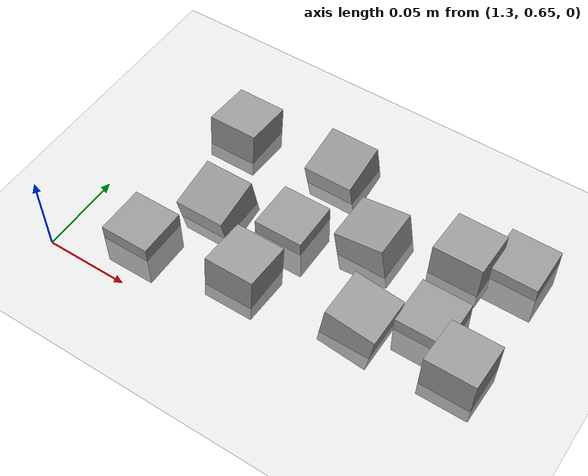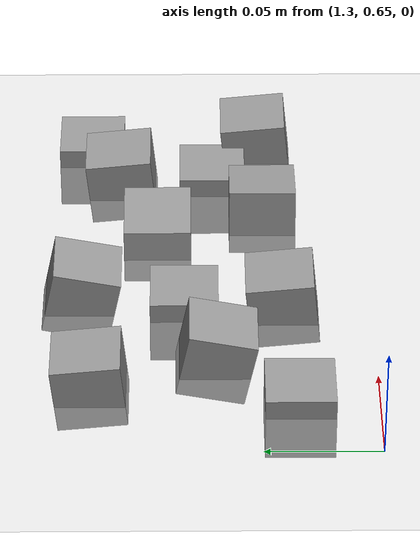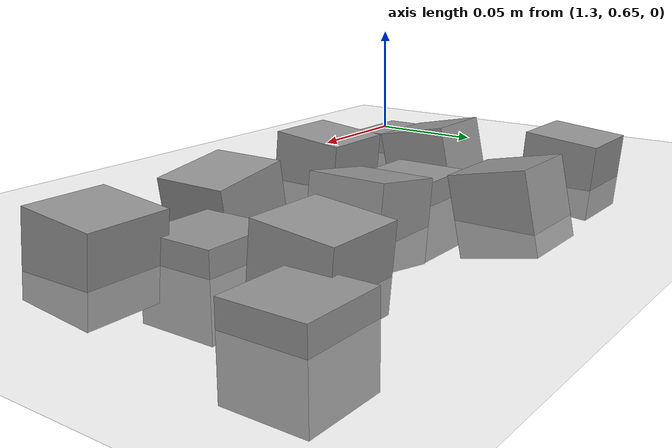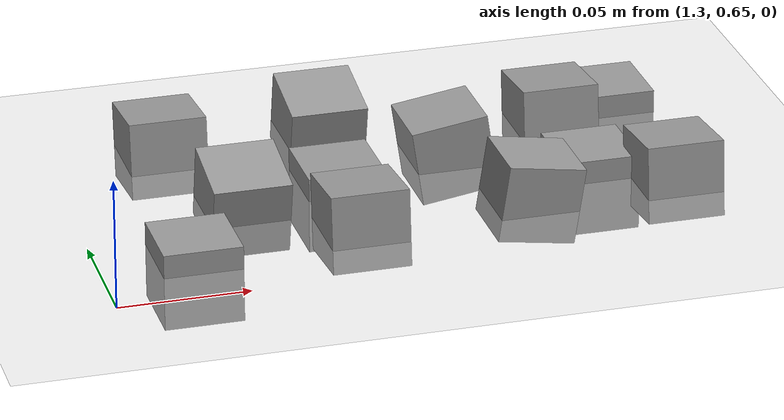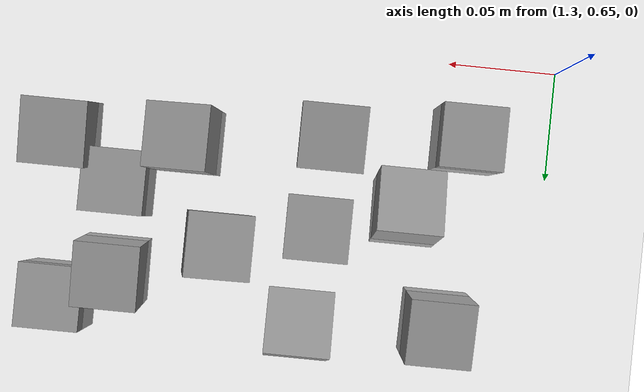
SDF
<sdf version="1.7">
 <world name="default">
  <model name="ground_plane">
   <static>1</static>
   <link name="link">
    <collision name="collision">
     <geometry><plane><normal>0 0 1</normal><size>100 100</size></plane></geometry>
     <surface><friction><ode><mu>100</mu><mu2>50</mu2></ode></friction></surface>
    </collision>
    <visual name="visual">
     <cast_shadows>0</cast_shadows>
     <geometry><plane><normal>0 0 1</normal><size>100 100</size></plane></geometry>
     <material>
      <script><uri>file://media/materials/scripts/gazebo.material</uri><name>Gazebo/Grey</name></script>
     </material>
    </visual>
   </link>
  </model>
  <model name="stone_road_0">
   <link name="link_0">
    <inertial>
     <mass>1</mass>
     <inertia>
      <ixx>0.166667</ixx>
      <ixy>0</ixy>
      <ixz>0</ixz>
      <iyy>0.166667</iyy>
      <iyz>0</iyz>
      <izz>0.166667</izz>
     </inertia>
    </inertial>
    <pose>-0.171827 0.03973 0.003778 0.2 -0 0</pose>
    <kinematic>1</kinematic>
    <visual name="visual">
     <geometry><box><size>0.03 0.03 0.03</size></box></geometry>
     <material>
      <lighting>1</lighting>
      <script><uri>file://media/materials/scripts/gazebo.material</uri><name>Gazebo/Grey</name></script>
      <shader type="pixel"><normal_map>__default__</normal_map></shader>
      <ambient>0.3 0.3 0.3 1</ambient>
      <diffuse>0.7 0.7 0.7 1</diffuse>
      <specular>0.01 0.01 0.01 1</specular>
      <emissive>0 0 0 1</emissive>
     </material>
    </visual>
    <collision name="collision">
     <geometry><box><size>0.03 0.03 0.03</size></box></geometry>
     <surface>
      <friction>
       <ode><mu>1</mu><mu2>1</mu2><fdir1>0 0 0</fdir1><slip1>0</slip1><slip2>0</slip2></ode>
       <torsional>
        <coefficient>1</coefficient>
        <patch_radius>0</patch_radius>
        <surface_radius>0</surface_radius>
        <use_patch_radius>1</use_patch_radius>
        <ode><slip>0</slip></ode>
       </torsional>
      </friction>
      <bounce><restitution_coefficient>0</restitution_coefficient><threshold>1e+06</threshold></bounce>
      <contact>
       <collide_without_contact>0</collide_without_contact>
       <collide_without_contact_bitmask>1</collide_without_contact_bitmask>
       <collide_bitmask>1</collide_bitmask>
       <ode>
        <soft_cfm>0</soft_cfm>
        <soft_erp>0.2</soft_erp>
        <kp>1e+13</kp>
        <kd>1</kd>
        <max_vel>0.01</max_vel>
        <min_depth>0</min_depth>
       </ode>
       <bullet>
        <split_impulse>1</split_impulse>
        <split_impulse_penetration_threshold>-0.01</split_impulse_penetration_threshold>
        <soft_cfm>0</soft_cfm>
        <soft_erp>0.2</soft_erp>
        <kp>1e+13</kp>
        <kd>1</kd>
       </bullet>
      </contact>
     </surface>
    </collision>
   </link>
   <link name="link_0_clone_2">
    <inertial>
     <mass>1</mass>
     <inertia>
      <ixx>0.166667</ixx>
      <ixy>0</ixy>
      <ixz>0</ixz>
      <iyy>0.166667</iyy>
      <iyz>0</iyz>
      <izz>0.166667</izz>
     </inertia>
    </inertial>
    <pose>-0.065685 0.018139 0.003778 0 0.15 0</pose>
    <kinematic>1</kinematic>
    <visual name="visual">
     <geometry><box><size>0.03 0.03 0.03</size></box></geometry>
     <material>
      <lighting>1</lighting>
      <script><uri>file://media/materials/scripts/gazebo.material</uri><name>Gazebo/Grey</name></script>
      <shader type="pixel"><normal_map>__default__</normal_map></shader>
      <ambient>0.3 0.3 0.3 1</ambient>
      <diffuse>0.7 0.7 0.7 1</diffuse>
      <specular>0.01 0.01 0.01 1</specular>
      <emissive>0 0 0 1</emissive>
     </material>
    </visual>
    <collision name="collision">
     <geometry><box><size>0.03 0.03 0.03</size></box></geometry>
     <surface>
      <friction>
       <ode><mu>1</mu><mu2>1</mu2><fdir1>0 0 0</fdir1><slip1>0</slip1><slip2>0</slip2></ode>
       <torsional>
        <coefficient>1</coefficient>
        <patch_radius>0</patch_radius>
        <surface_radius>0</surface_radius>
        <use_patch_radius>1</use_patch_radius>
        <ode><slip>0</slip></ode>
       </torsional>
      </friction>
      <bounce><restitution_coefficient>0</restitution_coefficient><threshold>1e+06</threshold></bounce>
      <contact>
       <collide_without_contact>0</collide_without_contact>
       <collide_without_contact_bitmask>1</collide_without_contact_bitmask>
       <collide_bitmask>1</collide_bitmask>
       <ode>
        <soft_cfm>0</soft_cfm>
        <soft_erp>0.2</soft_erp>
        <kp>1e+13</kp>
        <kd>1</kd>
        <max_vel>0.01</max_vel>
        <min_depth>0</min_depth>
       </ode>
       <bullet>
        <split_impulse>1</split_impulse>
        <split_impulse_penetration_threshold>-0.01</split_impulse_penetration_threshold>
        <soft_cfm>0</soft_cfm>
        <soft_erp>0.2</soft_erp>
        <kp>1e+13</kp>
        <kd>1</kd>
       </bullet>
      </contact>
     </surface>
    </collision>
   </link>
   <link name="link_0_clone_2_clone_2_clone_1">
    <inertial>
     <mass>1</mass>
     <inertia>
      <ixx>0.166667</ixx>
      <ixy>0</ixy>
      <ixz>0</ixz>
      <iyy>0.166667</iyy>
      <iyz>0</iyz>
      <izz>0.166667</izz>
     </inertia>
    </inertial>
    <pose>-0.085624 0.065625 0.003778 0 -0.15 0</pose>
    <kinematic>1</kinematic>
    <visual name="visual">
     <geometry><box><size>0.03 0.03 0.03</size></box></geometry>
     <material>
      <lighting>1</lighting>
      <script><uri>file://media/materials/scripts/gazebo.material</uri><name>Gazebo/Grey</name></script>
      <shader type="pixel"><normal_map>__default__</normal_map></shader>
      <ambient>0.3 0.3 0.3 1</ambient>
      <diffuse>0.7 0.7 0.7 1</diffuse>
      <specular>0.01 0.01 0.01 1</specular>
      <emissive>0 0 0 1</emissive>
     </material>
    </visual>
    <collision name="collision">
     <geometry><box><size>0.03 0.03 0.03</size></box></geometry>
     <surface>
      <friction>
       <ode><mu>1</mu><mu2>1</mu2><fdir1>0 0 0</fdir1><slip1>0</slip1><slip2>0</slip2></ode>
       <torsional>
        <coefficient>1</coefficient>
        <patch_radius>0</patch_radius>
        <surface_radius>0</surface_radius>
        <use_patch_radius>1</use_patch_radius>
        <ode><slip>0</slip></ode>
       </torsional>
      </friction>
      <bounce><restitution_coefficient>0</restitution_coefficient><threshold>1e+06</threshold></bounce>
      <contact>
       <collide_without_contact>0</collide_without_contact>
       <collide_without_contact_bitmask>1</collide_without_contact_bitmask>
       <collide_bitmask>1</collide_bitmask>
       <ode>
        <soft_cfm>0</soft_cfm>
        <soft_erp>0.2</soft_erp>
        <kp>1e+13</kp>
        <kd>1</kd>
        <max_vel>0.01</max_vel>
        <min_depth>0</min_depth>
       </ode>
       <bullet>
        <split_impulse>1</split_impulse>
        <split_impulse_penetration_threshold>-0.01</split_impulse_penetration_threshold>
        <soft_cfm>0</soft_cfm>
        <soft_erp>0.2</soft_erp>
        <kp>1e+13</kp>
        <kd>1</kd>
       </bullet>
      </contact>
     </surface>
    </collision>
   </link>
   <link name="link_0_clone_2_clone_2_clone_13_clone_clone_14">
    <inertial>
     <mass>1</mass>
     <inertia>
      <ixx>0.166667</ixx>
      <ixy>0</ixy>
      <ixz>0</ixz>
      <iyy>0.166667</iyy>
      <iyz>0</iyz>
      <izz>0.166667</izz>
     </inertia>
    </inertial>
    <pose>-0.190578 0.093923 0.003778 -0.1 0 0</pose>
    <kinematic>1</kinematic>
    <visual name="visual">
     <geometry><box><size>0.03 0.03 0.03</size></box></geometry>
     <material>
      <lighting>1</lighting>
      <script><uri>file://media/materials/scripts/gazebo.material</uri><name>Gazebo/Grey</name></script>
      <shader type="pixel"><normal_map>__default__</normal_map></shader>
      <ambient>0.3 0.3 0.3 1</ambient>
      <diffuse>0.7 0.7 0.7 1</diffuse>
      <specular>0.01 0.01 0.01 1</specular>
      <emissive>0 0 0 1</emissive>
     </material>
    </visual>
    <collision name="collision">
     <geometry><box><size>0.03 0.03 0.03</size></box></geometry>
     <surface>
      <friction>
       <ode><mu>1</mu><mu2>1</mu2><fdir1>0 0 0</fdir1><slip1>0</slip1><slip2>0</slip2></ode>
       <torsional>
        <coefficient>1</coefficient>
        <patch_radius>0</patch_radius>
        <surface_radius>0</surface_radius>
        <use_patch_radius>1</use_patch_radius>
        <ode><slip>0</slip></ode>
       </torsional>
      </friction>
      <bounce><restitution_coefficient>0</restitution_coefficient><threshold>1e+06</threshold></bounce>
      <contact>
       <collide_without_contact>0</collide_without_contact>
       <collide_without_contact_bitmask>1</collide_without_contact_bitmask>
       <collide_bitmask>1</collide_bitmask>
       <ode>
        <soft_cfm>0</soft_cfm>
        <soft_erp>0.2</soft_erp>
        <kp>1e+13</kp>
        <kd>1</kd>
        <max_vel>0.01</max_vel>
        <min_depth>0</min_depth>
       </ode>
       <bullet>
        <split_impulse>1</split_impulse>
        <split_impulse_penetration_threshold>-0.01</split_impulse_penetration_threshold>
        <soft_cfm>0</soft_cfm>
        <soft_erp>0.2</soft_erp>
        <kp>1e+13</kp>
        <kd>1</kd>
       </bullet>
      </contact>
     </surface>
    </collision>
   </link>
   <link name="link_0_clone_2_clone_2_clone_13_clone_clone_16_clone_0">
    <inertial>
     <mass>1</mass>
     <inertia>
      <ixx>0.166667</ixx>
      <ixy>0</ixy>
      <ixz>0</ixz>
      <iyy>0.166667</iyy>
      <iyz>0</iyz>
      <izz>0.166667</izz>
     </inertia>
    </inertial>
    <pose>-0.010782 0.09679 -0.006222 0 -0 0</pose>
    <kinematic>1</kinematic>
    <visual name="visual">
     <geometry><box><size>0.03 0.03 0.03</size></box></geometry>
     <material>
      <lighting>1</lighting>
      <script><uri>file://media/materials/scripts/gazebo.material</uri><name>Gazebo/Grey</name></script>
      <shader type="pixel"><normal_map>__default__</normal_map></shader>
      <ambient>0.3 0.3 0.3 1</ambient>
      <diffuse>0.7 0.7 0.7 1</diffuse>
      <specular>0.01 0.01 0.01 1</specular>
      <emissive>0 0 0 1</emissive>
     </material>
    </visual>
    <collision name="collision">
     <geometry><box><size>0.03 0.03 0.03</size></box></geometry>
     <surface>
      <friction>
       <ode><mu>1</mu><mu2>1</mu2><fdir1>0 0 0</fdir1><slip1>0</slip1><slip2>0</slip2></ode>
       <torsional>
        <coefficient>1</coefficient>
        <patch_radius>0</patch_radius>
        <surface_radius>0</surface_radius>
        <use_patch_radius>1</use_patch_radius>
        <ode><slip>0</slip></ode>
       </torsional>
      </friction>
      <bounce><restitution_coefficient>0</restitution_coefficient><threshold>1e+06</threshold></bounce>
      <contact>
       <collide_without_contact>0</collide_without_contact>
       <collide_without_contact_bitmask>1</collide_without_contact_bitmask>
       <collide_bitmask>1</collide_bitmask>
       <ode>
        <soft_cfm>0</soft_cfm>
        <soft_erp>0.2</soft_erp>
        <kp>1e+13</kp>
        <kd>1</kd>
        <max_vel>0.01</max_vel>
        <min_depth>0</min_depth>
       </ode>
       <bullet>
        <split_impulse>1</split_impulse>
        <split_impulse_penetration_threshold>-0.01</split_impulse_penetration_threshold>
        <soft_cfm>0</soft_cfm>
        <soft_erp>0.2</soft_erp>
        <kp>1e+13</kp>
        <kd>1</kd>
       </bullet>
      </contact>
     </surface>
    </collision>
   </link>
   <link name="link_0_clone_2_clone_2_clone_13_clone_clone_16_clone_2">
    <inertial>
     <mass>1</mass>
     <inertia>
      <ixx>0.166667</ixx>
      <ixy>0</ixy>
      <ixz>0</ixz>
      <iyy>0.166667</iyy>
      <iyz>0</iyz>
      <izz>0.166667</izz>
     </inertia>
    </inertial>
    <pose>-0.035128 0.040728 -0.006222 0 -0 0</pose>
    <kinematic>1</kinematic>
    <visual name="visual">
     <geometry><box><size>0.03 0.03 0.03</size></box></geometry>
     <material>
      <lighting>1</lighting>
      <script><uri>file://media/materials/scripts/gazebo.material</uri><name>Gazebo/Grey</name></script>
      <shader type="pixel"><normal_map>__default__</normal_map></shader>
      <ambient>0.3 0.3 0.3 1</ambient>
      <diffuse>0.7 0.7 0.7 1</diffuse>
      <specular>0.01 0.01 0.01 1</specular>
      <emissive>0 0 0 1</emissive>
     </material>
    </visual>
    <collision name="collision">
     <geometry><box><size>0.03 0.03 0.03</size></box></geometry>
     <surface>
      <friction>
       <ode><mu>1</mu><mu2>1</mu2><fdir1>0 0 0</fdir1><slip1>0</slip1><slip2>0</slip2></ode>
       <torsional>
        <coefficient>1</coefficient>
        <patch_radius>0</patch_radius>
        <surface_radius>0</surface_radius>
        <use_patch_radius>1</use_patch_radius>
        <ode><slip>0</slip></ode>
       </torsional>
      </friction>
      <bounce><restitution_coefficient>0</restitution_coefficient><threshold>1e+06</threshold></bounce>
      <contact>
       <collide_without_contact>0</collide_without_contact>
       <collide_without_contact_bitmask>1</collide_without_contact_bitmask>
       <collide_bitmask>1</collide_bitmask>
       <ode>
        <soft_cfm>0</soft_cfm>
        <soft_erp>0.2</soft_erp>
        <kp>1e+13</kp>
        <kd>1</kd>
        <max_vel>0.01</max_vel>
        <min_depth>0</min_depth>
       </ode>
       <bullet>
        <split_impulse>1</split_impulse>
        <split_impulse_penetration_threshold>-0.01</split_impulse_penetration_threshold>
        <soft_cfm>0</soft_cfm>
        <soft_erp>0.2</soft_erp>
        <kp>1e+13</kp>
        <kd>1</kd>
       </bullet>
      </contact>
     </surface>
    </collision>
   </link>
   <link name="link_0_clone_2_clone_2_clone_13_clone_clone_16_clone_31">
    <inertial>
     <mass>1</mass>
     <inertia>
      <ixx>0.166667</ixx>
      <ixy>0</ixy>
      <ixz>0</ixz>
      <iyy>0.166667</iyy>
      <iyz>0</iyz>
      <izz>0.166667</izz>
     </inertia>
    </inertial>
    <pose>-0.198811 0.004584 -0.006222 0 -0 0</pose>
    <kinematic>1</kinematic>
    <visual name="visual">
     <geometry><box><size>0.03 0.03 0.03</size></box></geometry>
     <material>
      <lighting>1</lighting>
      <script><uri>file://media/materials/scripts/gazebo.material</uri><name>Gazebo/Grey</name></script>
      <shader type="pixel"><normal_map>__default__</normal_map></shader>
      <ambient>0.3 0.3 0.3 1</ambient>
      <diffuse>0.7 0.7 0.7 1</diffuse>
      <specular>0.01 0.01 0.01 1</specular>
      <emissive>0 0 0 1</emissive>
     </material>
    </visual>
    <collision name="collision">
     <geometry><box><size>0.03 0.03 0.03</size></box></geometry>
     <surface>
      <friction>
       <ode><mu>1</mu><mu2>1</mu2><fdir1>0 0 0</fdir1><slip1>0</slip1><slip2>0</slip2></ode>
       <torsional>
        <coefficient>1</coefficient>
        <patch_radius>0</patch_radius>
        <surface_radius>0</surface_radius>
        <use_patch_radius>1</use_patch_radius>
        <ode><slip>0</slip></ode>
       </torsional>
      </friction>
      <bounce><restitution_coefficient>0</restitution_coefficient><threshold>1e+06</threshold></bounce>
      <contact>
       <collide_without_contact>0</collide_without_contact>
       <collide_without_contact_bitmask>1</collide_without_contact_bitmask>
       <collide_bitmask>1</collide_bitmask>
       <ode>
        <soft_cfm>0</soft_cfm>
        <soft_erp>0.2</soft_erp>
        <kp>1e+13</kp>
        <kd>1</kd>
        <max_vel>0.01</max_vel>
        <min_depth>0</min_depth>
       </ode>
       <bullet>
        <split_impulse>1</split_impulse>
        <split_impulse_penetration_threshold>-0.01</split_impulse_penetration_threshold>
        <soft_cfm>0</soft_cfm>
        <soft_erp>0.2</soft_erp>
        <kp>1e+13</kp>
        <kd>1</kd>
       </bullet>
      </contact>
     </surface>
    </collision>
   </link>
   <link name="link_0_clone_2_clone_2_clone_13_clone_clone_16_clone_4">
    <inertial>
     <mass>1</mass>
     <inertia>
      <ixx>0.166667</ixx>
      <ixy>0</ixy>
      <ixz>0</ixz>
      <iyy>0.166667</iyy>
      <iyz>0</iyz>
      <izz>0.166667</izz>
     </inertia>
    </inertial>
    <pose>-0.131411 0.053677 -0.006222 0 -0 0</pose>
    <kinematic>1</kinematic>
    <visual name="visual">
     <geometry><box><size>0.03 0.03 0.03</size></box></geometry>
     <material>
      <lighting>1</lighting>
      <script><uri>file://media/materials/scripts/gazebo.material</uri><name>Gazebo/Grey</name></script>
      <shader type="pixel"><normal_map>__default__</normal_map></shader>
      <ambient>0.3 0.3 0.3 1</ambient>
      <diffuse>0.7 0.7 0.7 1</diffuse>
      <specular>0.01 0.01 0.01 1</specular>
      <emissive>0 0 0 1</emissive>
     </material>
    </visual>
    <collision name="collision">
     <geometry><box><size>0.03 0.03 0.03</size></box></geometry>
     <surface>
      <friction>
       <ode><mu>1</mu><mu2>1</mu2><fdir1>0 0 0</fdir1><slip1>0</slip1><slip2>0</slip2></ode>
       <torsional>
        <coefficient>1</coefficient>
        <patch_radius>0</patch_radius>
        <surface_radius>0</surface_radius>
        <use_patch_radius>1</use_patch_radius>
        <ode><slip>0</slip></ode>
       </torsional>
      </friction>
      <bounce><restitution_coefficient>0</restitution_coefficient><threshold>1e+06</threshold></bounce>
      <contact>
       <collide_without_contact>0</collide_without_contact>
       <collide_without_contact_bitmask>1</collide_without_contact_bitmask>
       <collide_bitmask>1</collide_bitmask>
       <ode>
        <soft_cfm>0</soft_cfm>
        <soft_erp>0.2</soft_erp>
        <kp>1e+13</kp>
        <kd>1</kd>
        <max_vel>0.01</max_vel>
        <min_depth>0</min_depth>
       </ode>
       <bullet>
        <split_impulse>1</split_impulse>
        <split_impulse_penetration_threshold>-0.01</split_impulse_penetration_threshold>
        <soft_cfm>0</soft_cfm>
        <soft_erp>0.2</soft_erp>
        <kp>1e+13</kp>
        <kd>1</kd>
       </bullet>
      </contact>
     </surface>
    </collision>
   </link>
   <link name="link_0_clone_2_clone_2_clone_13_clone_clone_2">
    <inertial>
     <mass>1</mass>
     <inertia>
      <ixx>0.166667</ixx>
      <ixy>0</ixy>
      <ixz>0</ixz>
      <iyy>0.166667</iyy>
      <iyz>0</iyz>
      <izz>0.166667</izz>
     </inertia>
    </inertial>
    <pose>-0.037997 0.082571 0.003778 -0.1 0 0</pose>
    <kinematic>1</kinematic>
    <visual name="visual">
     <geometry><box><size>0.03 0.03 0.03</size></box></geometry>
     <material>
      <lighting>1</lighting>
      <script><uri>file://media/materials/scripts/gazebo.material</uri><name>Gazebo/Grey</name></script>
      <shader type="pixel"><normal_map>__default__</normal_map></shader>
      <ambient>0.3 0.3 0.3 1</ambient>
      <diffuse>0.7 0.7 0.7 1</diffuse>
      <specular>0.01 0.01 0.01 1</specular>
      <emissive>0 0 0 1</emissive>
     </material>
    </visual>
    <collision name="collision">
     <geometry><box><size>0.03 0.03 0.03</size></box></geometry>
     <surface>
      <friction>
       <ode><mu>1</mu><mu2>1</mu2><fdir1>0 0 0</fdir1><slip1>0</slip1><slip2>0</slip2></ode>
       <torsional>
        <coefficient>1</coefficient>
        <patch_radius>0</patch_radius>
        <surface_radius>0</surface_radius>
        <use_patch_radius>1</use_patch_radius>
        <ode><slip>0</slip></ode>
       </torsional>
      </friction>
      <bounce><restitution_coefficient>0</restitution_coefficient><threshold>1e+06</threshold></bounce>
      <contact>
       <collide_without_contact>0</collide_without_contact>
       <collide_without_contact_bitmask>1</collide_without_contact_bitmask>
       <collide_bitmask>1</collide_bitmask>
       <ode>
        <soft_cfm>0</soft_cfm>
        <soft_erp>0.2</soft_erp>
        <kp>1e+13</kp>
        <kd>1</kd>
        <max_vel>0.01</max_vel>
        <min_depth>0</min_depth>
       </ode>
       <bullet>
        <split_impulse>1</split_impulse>
        <split_impulse_penetration_threshold>-0.01</split_impulse_penetration_threshold>
        <soft_cfm>0</soft_cfm>
        <soft_erp>0.2</soft_erp>
        <kp>1e+13</kp>
        <kd>1</kd>
       </bullet>
      </contact>
     </surface>
    </collision>
   </link>
   <link name="link_0_clone_2_clone_2_clone_13_clone_clone_3">
    <inertial>
     <mass>1</mass>
     <inertia>
      <ixx>0.166667</ixx>
      <ixy>0</ixy>
      <ixz>0</ixz>
      <iyy>0.166667</iyy>
      <iyz>0</iyz>
      <izz>0.166667</izz>
     </inertia>
    </inertial>
    <pose>-0.008408 0.020239 0.003778 -0.1 0 0</pose>
    <kinematic>1</kinematic>
    <visual name="visual">
     <geometry><box><size>0.03 0.03 0.03</size></box></geometry>
     <material>
      <lighting>1</lighting>
      <script><uri>file://media/materials/scripts/gazebo.material</uri><name>Gazebo/Grey</name></script>
      <shader type="pixel"><normal_map>__default__</normal_map></shader>
      <ambient>0.3 0.3 0.3 1</ambient>
      <diffuse>0.7 0.7 0.7 1</diffuse>
      <specular>0.01 0.01 0.01 1</specular>
      <emissive>0 0 0 1</emissive>
     </material>
    </visual>
    <collision name="collision">
     <geometry><box><size>0.03 0.03 0.03</size></box></geometry>
     <surface>
      <friction>
       <ode><mu>1</mu><mu2>1</mu2><fdir1>0 0 0</fdir1><slip1>0</slip1><slip2>0</slip2></ode>
       <torsional>
        <coefficient>1</coefficient>
        <patch_radius>0</patch_radius>
        <surface_radius>0</surface_radius>
        <use_patch_radius>1</use_patch_radius>
        <ode><slip>0</slip></ode>
       </torsional>
      </friction>
      <bounce><restitution_coefficient>0</restitution_coefficient><threshold>1e+06</threshold></bounce>
      <contact>
       <collide_without_contact>0</collide_without_contact>
       <collide_without_contact_bitmask>1</collide_without_contact_bitmask>
       <collide_bitmask>1</collide_bitmask>
       <ode>
        <soft_cfm>0</soft_cfm>
        <soft_erp>0.2</soft_erp>
        <kp>1e+13</kp>
        <kd>1</kd>
        <max_vel>0.01</max_vel>
        <min_depth>0</min_depth>
       </ode>
       <bullet>
        <split_impulse>1</split_impulse>
        <split_impulse_penetration_threshold>-0.01</split_impulse_penetration_threshold>
        <soft_cfm>0</soft_cfm>
        <soft_erp>0.2</soft_erp>
        <kp>1e+13</kp>
        <kd>1</kd>
       </bullet>
      </contact>
     </surface>
    </collision>
   </link>
   <link name="link_0_clone_2_clone_2_clone_13_clone_clone_7">
    <inertial>
     <mass>1</mass>
     <inertia>
      <ixx>0.166667</ixx>
      <ixy>0</ixy>
      <ixz>0</ixz>
      <iyy>0.166667</iyy>
      <iyz>0</iyz>
      <izz>0.166667</izz>
     </inertia>
    </inertial>
    <pose>-0.133876 0.010561 0.003778 -0.1 0 0</pose>
    <kinematic>1</kinematic>
    <visual name="visual">
     <geometry><box><size>0.03 0.03 0.03</size></box></geometry>
     <material>
      <lighting>1</lighting>
      <script><uri>file://media/materials/scripts/gazebo.material</uri><name>Gazebo/Grey</name></script>
      <shader type="pixel"><normal_map>__default__</normal_map></shader>
      <ambient>0.3 0.3 0.3 1</ambient>
      <diffuse>0.7 0.7 0.7 1</diffuse>
      <specular>0.01 0.01 0.01 1</specular>
      <emissive>0 0 0 1</emissive>
     </material>
    </visual>
    <collision name="collision">
     <geometry><box><size>0.03 0.03 0.03</size></box></geometry>
     <surface>
      <friction>
       <ode><mu>1</mu><mu2>1</mu2><fdir1>0 0 0</fdir1><slip1>0</slip1><slip2>0</slip2></ode>
       <torsional>
        <coefficient>1</coefficient>
        <patch_radius>0</patch_radius>
        <surface_radius>0</surface_radius>
        <use_patch_radius>1</use_patch_radius>
        <ode><slip>0</slip></ode>
       </torsional>
      </friction>
      <bounce><restitution_coefficient>0</restitution_coefficient><threshold>1e+06</threshold></bounce>
      <contact>
       <collide_without_contact>0</collide_without_contact>
       <collide_without_contact_bitmask>1</collide_without_contact_bitmask>
       <collide_bitmask>1</collide_bitmask>
       <ode>
        <soft_cfm>0</soft_cfm>
        <soft_erp>0.2</soft_erp>
        <kp>1e+13</kp>
        <kd>1</kd>
        <max_vel>0.01</max_vel>
        <min_depth>0</min_depth>
       </ode>
       <bullet>
        <split_impulse>1</split_impulse>
        <split_impulse_penetration_threshold>-0.01</split_impulse_penetration_threshold>
        <soft_cfm>0</soft_cfm>
        <soft_erp>0.2</soft_erp>
        <kp>1e+13</kp>
        <kd>1</kd>
       </bullet>
      </contact>
     </surface>
    </collision>
   </link>
   <link name="link_0_clone_3">
    <inertial>
     <mass>1</mass>
     <inertia>
      <ixx>0.166667</ixx>
      <ixy>0</ixy>
      <ixz>0</ixz>
      <iyy>0.166667</iyy>
      <iyz>0</iyz>
      <izz>0.166667</izz>
     </inertia>
    </inertial>
    <pose>-0.126666 0.098861 0.003778 0.2 -0 0</pose>
    <kinematic>1</kinematic>
    <visual name="visual">
     <geometry><box><size>0.03 0.03 0.03</size></box></geometry>
     <material>
      <lighting>1</lighting>
      <script><uri>file://media/materials/scripts/gazebo.material</uri><name>Gazebo/Grey</name></script>
      <shader type="pixel"><normal_map>__default__</normal_map></shader>
      <ambient>0.3 0.3 0.3 1</ambient>
      <diffuse>0.7 0.7 0.7 1</diffuse>
      <specular>0.01 0.01 0.01 1</specular>
      <emissive>0 0 0 1</emissive>
     </material>
    </visual>
    <collision name="collision">
     <geometry><box><size>0.03 0.03 0.03</size></box></geometry>
     <surface>
      <friction>
       <ode><mu>1</mu><mu2>1</mu2><fdir1>0 0 0</fdir1><slip1>0</slip1><slip2>0</slip2></ode>
       <torsional>
        <coefficient>1</coefficient>
        <patch_radius>0</patch_radius>
        <surface_radius>0</surface_radius>
        <use_patch_radius>1</use_patch_radius>
        <ode><slip>0</slip></ode>
       </torsional>
      </friction>
      <bounce><restitution_coefficient>0</restitution_coefficient><threshold>1e+06</threshold></bounce>
      <contact>
       <collide_without_contact>0</collide_without_contact>
       <collide_without_contact_bitmask>1</collide_without_contact_bitmask>
       <collide_bitmask>1</collide_bitmask>
       <ode>
        <soft_cfm>0</soft_cfm>
        <soft_erp>0.2</soft_erp>
        <kp>1e+13</kp>
        <kd>1</kd>
        <max_vel>0.01</max_vel>
        <min_depth>0</min_depth>
       </ode>
       <bullet>
        <split_impulse>1</split_impulse>
        <split_impulse_penetration_threshold>-0.01</split_impulse_penetration_threshold>
        <soft_cfm>0</soft_cfm>
        <soft_erp>0.2</soft_erp>
        <kp>1e+13</kp>
        <kd>1</kd>
       </bullet>
      </contact>
     </surface>
    </collision>
   </link>
   <static>0</static>
   <pose>1.53544 0.679184 -0 0 -0 0</pose>
  </model>
 </world>
</sdf>
